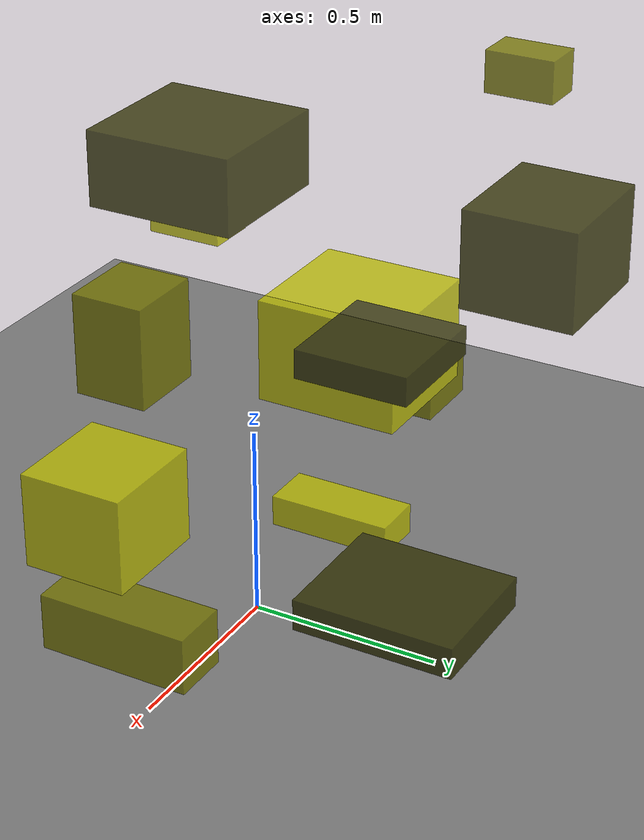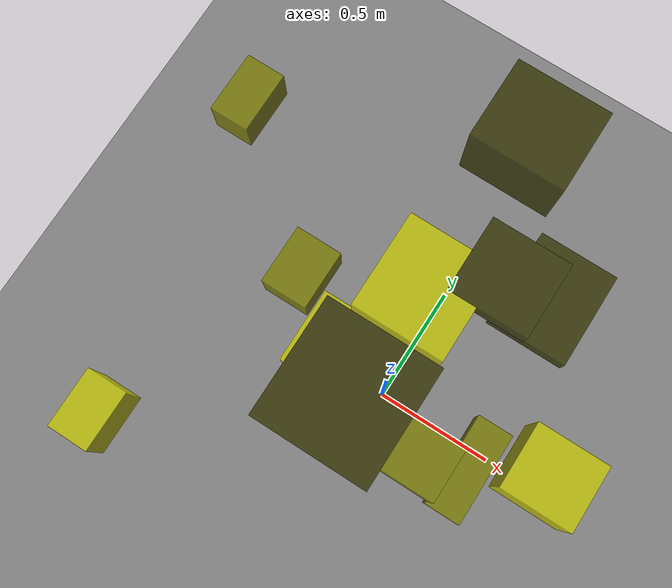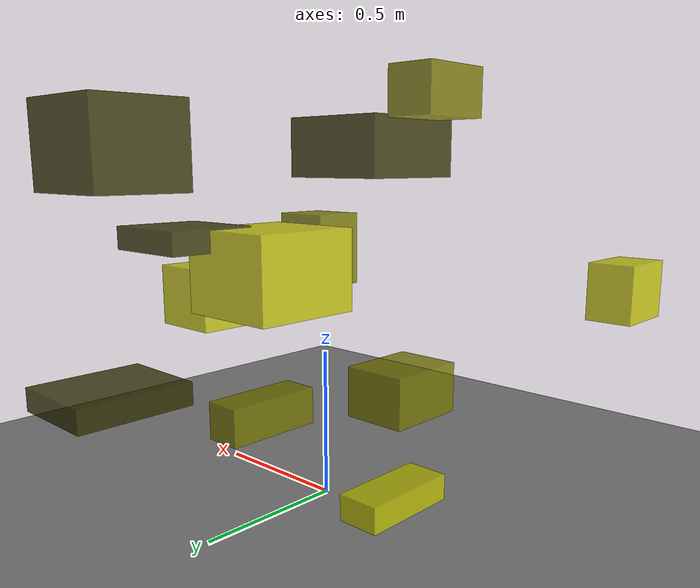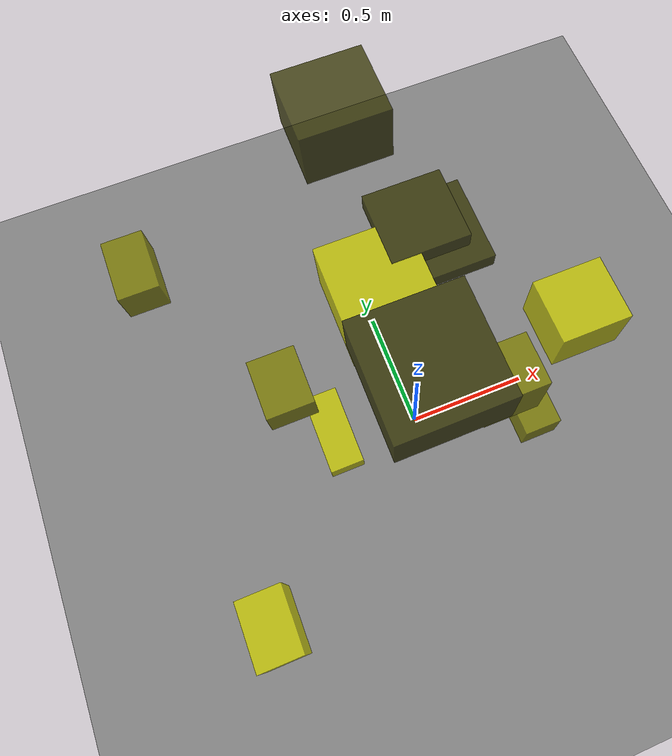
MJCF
<?xml version="1.0"?>
<mujoco model="obstacle_scene">
  <compiler angle="radian" coordinate="local"/>
  <option timestep="0.001" gravity="0 0 -9.81"/>

  <asset>
    <material name="obstacle_mat" rgba="0.8 0.8 0.0 0.8"/>
    <material name="ground_mat" rgba="0.5 0.5 0.5 1"/>
  </asset>

  <worldbody>
    <!-- Ground plane -->
    <geom name="ground" type="plane" size="3 3 0.1" material="ground_mat"/>

    <!-- Obstacles -->
    <body name="obstacle_0" pos="0.163266 0.428705 0.901598">
      <geom name="obs_0" type="box" size="0.144195 0.138264 0.035185" rgba="0.2 0.2 0.0 0.8"/>
    </body>
    <body name="obstacle_1" pos="0.439537 -0.086861 0.163118">
      <geom name="obs_1" type="box" size="0.075682 0.198065 0.074087" rgba="0.5 0.5 0.0 0.8"/>
    </body>
    <body name="obstacle_2" pos="-0.346593 0.051256 0.106403">
      <geom name="obs_2" type="box" size="0.070430 0.166871 0.042208" rgba="0.8 0.8 0.0 0.8"/>
    </body>
    <body name="obstacle_3" pos="0.002705 0.743259 1.162138">
      <geom name="obs_3" type="box" size="0.151637 0.132962 0.115414" rgba="0.2 0.2 0.0 0.8"/>
    </body>
    <body name="obstacle_4" pos="0.222250 -0.191839 0.816556">
      <geom name="obs_4" type="box" size="0.101154 0.092561 0.127545" rgba="0.5 0.5 0.0 0.8"/>
    </body>
    <body name="obstacle_5" pos="-0.040124 0.266210 0.805663">
      <geom name="obs_5" type="box" size="0.166087 0.174918 0.126656" rgba="0.8 0.8 0.0 0.8"/>
    </body>
    <body name="obstacle_6" pos="-0.050728 -0.168961 1.169516">
      <geom name="obs_6" type="box" size="0.183099 0.189861 0.095240" rgba="0.2 0.2 0.0 0.8"/>
    </body>
    <body name="obstacle_7" pos="-0.715544 0.367778 1.271502">
      <geom name="obs_7" type="box" size="0.057939 0.091891 0.054853" rgba="0.5 0.5 0.0 0.8"/>
    </body>
    <body name="obstacle_8" pos="0.629069 0.002147 0.622345">
      <geom name="obs_8" type="box" size="0.134156 0.124905 0.114370" rgba="0.8 0.8 0.0 0.8"/>
    </body>
    <body name="obstacle_9" pos="0.353833 0.597213 0.404998">
      <geom name="obs_9" type="box" size="0.161242 0.194153 0.038514" rgba="0.2 0.2 0.0 0.8"/>
    </body>
    <body name="obstacle_10" pos="-0.469610 0.171838 0.506225">
      <geom name="obs_10" type="box" size="0.092253 0.117178 0.070033" rgba="0.5 0.5 0.0 0.8"/>
    </body>
    <body name="obstacle_11" pos="-0.741103 -0.622969 0.718743">
      <geom name="obs_11" type="box" size="0.074348 0.109451 0.092563" rgba="0.8 0.8 0.0 0.8"/>
    </body>
  </worldbody>
</mujoco>
